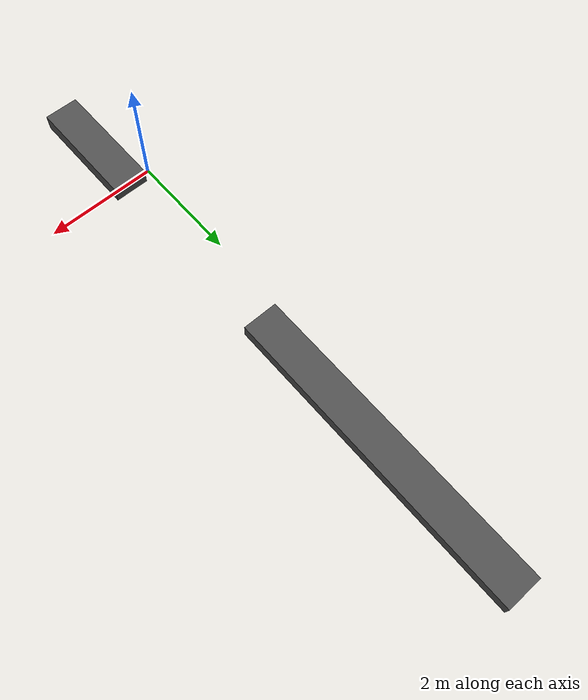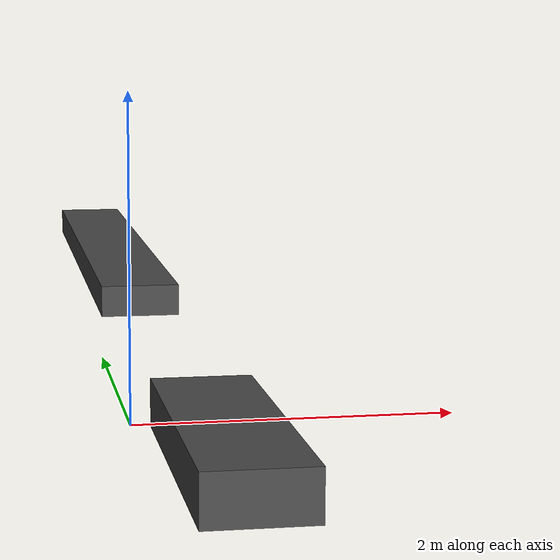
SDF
<?xml version='1.0'?>
<sdf version='1.7'>
  <model name='parede'>
    <link name='Wall_2_clone_clone_clone_clone_0'>
      <pose>0.44633 -0.912131 0.106547 0 -0 1.57</pose>
      <self_collide>0</self_collide>
      <enable_wind>0</enable_wind>
      <kinematic>0</kinematic>
      <inertial>
        <inertia>
          <ixx>0</ixx>
          <ixy>0</ixy>
          <ixz>0</ixz>
          <iyy>0</iyy>
          <iyz>0</iyz>
          <izz>0</izz>
        </inertia>
        <mass>0</mass>
        <pose>0 0 0 0 -0 0</pose>
      </inertial>
      <gravity>1</gravity>
      <visual name='Wall_2_Visual'>
        <pose>0 0 0 0 -0 0</pose>
        <geometry>
          <box>
            <size>2.07407 0.623828 0.297228</size>
          </box>
        </geometry>
        <material>
          <script>
            <uri>file://media/materials/scripts/gazebo.material</uri>
            <name>Gazebo/DarkGrey</name>
          </script>
          <ambient>0.5 0.5 0.5 1</ambient>
          <shader type='pixel'/>
        </material>
        <meta>
          <layer>0</layer>
        </meta>
        <transparency>0</transparency>
        <cast_shadows>1</cast_shadows>
      </visual>
      <collision name='Wall_2_Collision'>
        <laser_retro>0</laser_retro>
        <max_contacts>10</max_contacts>
        <pose>0 0 0 0 -0 0</pose>
        <geometry>
          <box>
            <size>2.07407 0.623828 0.297228</size>
          </box>
        </geometry>
        <surface>
          <friction>
            <ode>
              <mu>1</mu>
              <mu2>1</mu2>
              <fdir1>0 0 0</fdir1>
              <slip1>0</slip1>
              <slip2>0</slip2>
            </ode>
            <torsional>
              <coefficient>1</coefficient>
              <patch_radius>0</patch_radius>
              <surface_radius>0</surface_radius>
              <use_patch_radius>1</use_patch_radius>
              <ode>
                <slip>0</slip>
              </ode>
            </torsional>
          </friction>
          <bounce>
            <restitution_coefficient>0</restitution_coefficient>
            <threshold>1e+06</threshold>
          </bounce>
          <contact>
            <collide_without_contact>0</collide_without_contact>
            <collide_without_contact_bitmask>1</collide_without_contact_bitmask>
            <collide_bitmask>1</collide_bitmask>
            <ode>
              <soft_cfm>0</soft_cfm>
              <soft_erp>0.2</soft_erp>
              <kp>1e+13</kp>
              <kd>1</kd>
              <max_vel>0.01</max_vel>
              <min_depth>0</min_depth>
            </ode>
            <bullet>
              <split_impulse>1</split_impulse>
              <split_impulse_penetration_threshold>-0.01</split_impulse_penetration_threshold>
              <soft_cfm>0</soft_cfm>
              <soft_erp>0.2</soft_erp>
              <kp>1e+13</kp>
              <kd>1</kd>
            </bullet>
          </contact>
        </surface>
      </collision>
    </link>
    <link name='Wall_2_clone_clone_clone_clone_0_clone'>
      <pose>0.442035 6.25984 0.141693 0 -0 1.57</pose>
      <self_collide>0</self_collide>
      <enable_wind>0</enable_wind>
      <kinematic>0</kinematic>
      <inertial>
        <inertia>
          <ixx>0</ixx>
          <ixy>0</ixy>
          <ixz>0</ixz>
          <iyy>0</iyy>
          <iyz>0</iyz>
          <izz>0</izz>
        </inertia>
        <mass>0</mass>
        <pose>0 0 0 0 -0 0</pose>
      </inertial>
      <gravity>1</gravity>
      <visual name='Wall_2_Visual'>
        <pose>0 0 0 0 -0 0</pose>
        <geometry>
          <box>
            <size>5.47187 0.631747 0.249597</size>
          </box>
        </geometry>
        <material>
          <script>
            <uri>file://media/materials/scripts/gazebo.material</uri>
            <name>Gazebo/DarkGrey</name>
          </script>
          <ambient>0.5 0.5 0.5 1</ambient>
          <shader type='pixel'/>
        </material>
        <meta>
          <layer>0</layer>
        </meta>
        <transparency>0</transparency>
        <cast_shadows>1</cast_shadows>
      </visual>
      <collision name='Wall_2_Collision'>
        <laser_retro>0</laser_retro>
        <max_contacts>10</max_contacts>
        <pose>0 0 0 0 -0 0</pose>
        <geometry>
          <box>
            <size>5.47187 0.631747 0.249597</size>
          </box>
        </geometry>
        <surface>
          <friction>
            <ode>
              <mu>1</mu>
              <mu2>1</mu2>
              <fdir1>0 0 0</fdir1>
              <slip1>0</slip1>
              <slip2>0</slip2>
            </ode>
            <torsional>
              <coefficient>1</coefficient>
              <patch_radius>0</patch_radius>
              <surface_radius>0</surface_radius>
              <use_patch_radius>1</use_patch_radius>
              <ode>
                <slip>0</slip>
              </ode>
            </torsional>
          </friction>
          <bounce>
            <restitution_coefficient>0</restitution_coefficient>
            <threshold>1e+06</threshold>
          </bounce>
          <contact>
            <collide_without_contact>0</collide_without_contact>
            <collide_without_contact_bitmask>1</collide_without_contact_bitmask>
            <collide_bitmask>1</collide_bitmask>
            <ode>
              <soft_cfm>0</soft_cfm>
              <soft_erp>0.2</soft_erp>
              <kp>1e+13</kp>
              <kd>1</kd>
              <max_vel>0.01</max_vel>
              <min_depth>0</min_depth>
            </ode>
            <bullet>
              <split_impulse>1</split_impulse>
              <split_impulse_penetration_threshold>-0.01</split_impulse_penetration_threshold>
              <soft_cfm>0</soft_cfm>
              <soft_erp>0.2</soft_erp>
              <kp>1e+13</kp>
              <kd>1</kd>
            </bullet>
          </contact>
        </surface>
      </collision>
    </link>
    <static>1</static>
    <allow_auto_disable>1</allow_auto_disable>
  </model>
</sdf>
